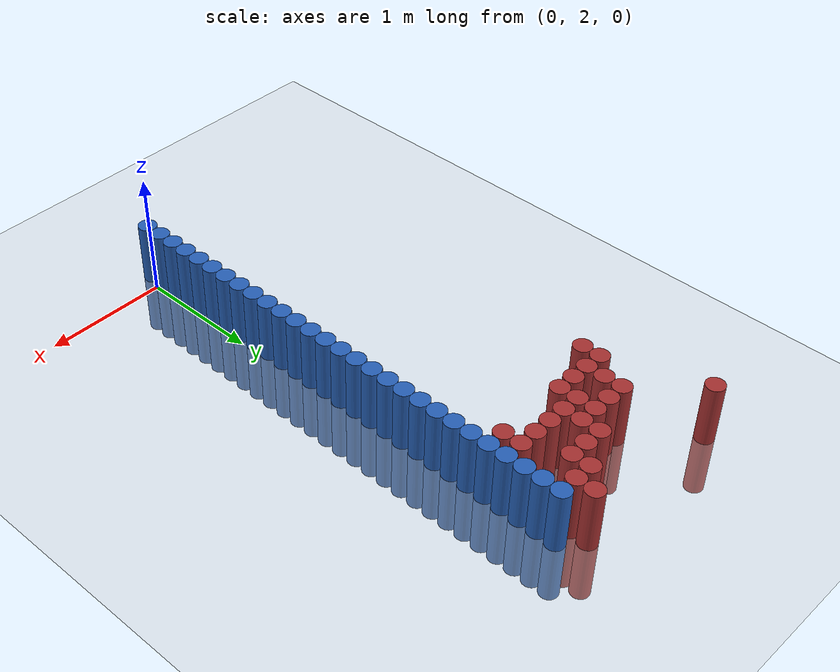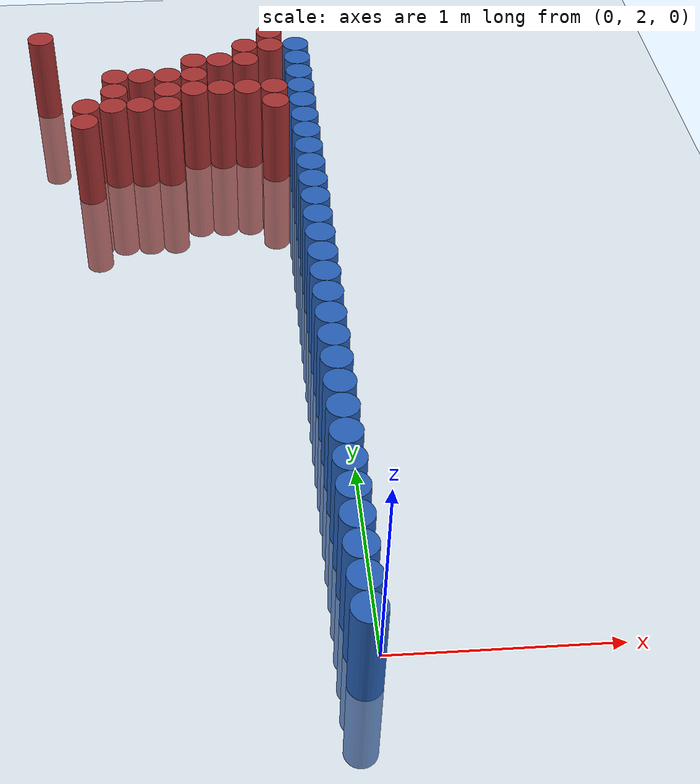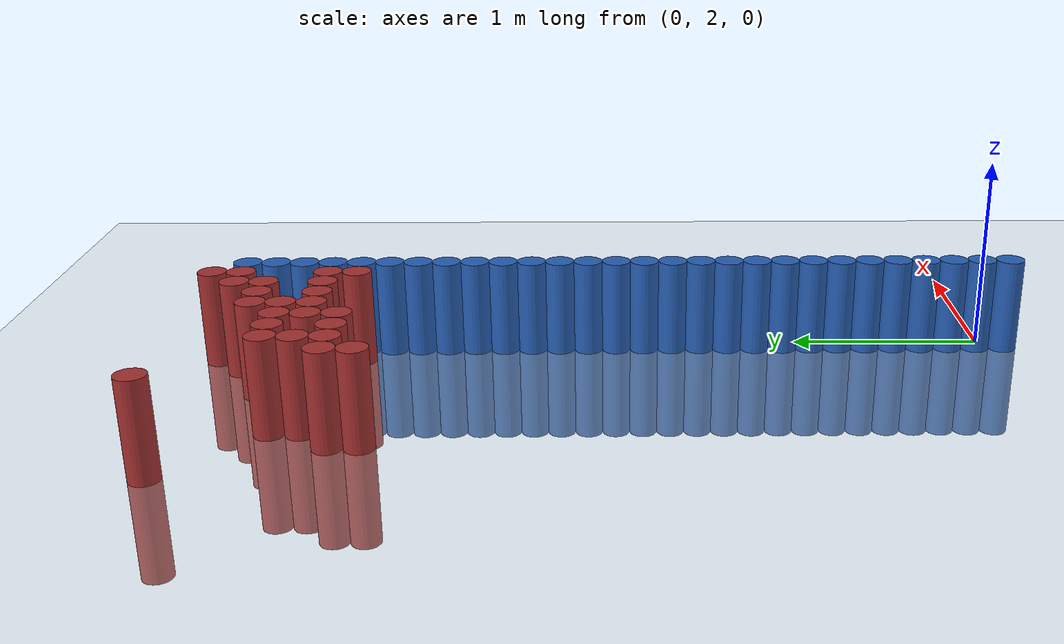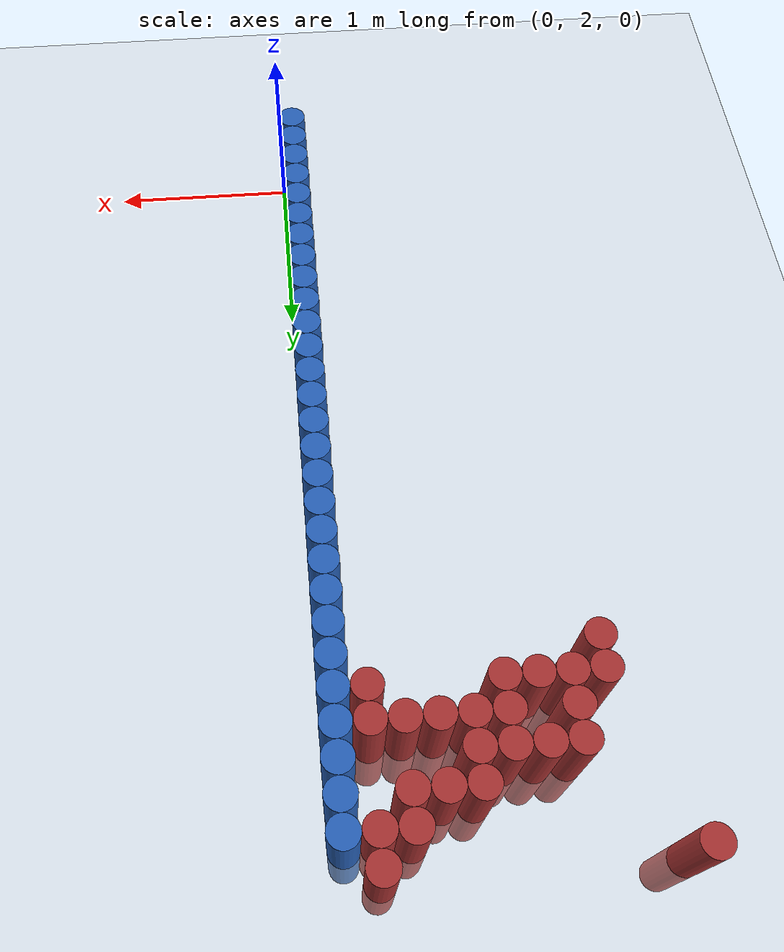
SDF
<sdf version="1.6">
 <world name="default">
  <model name="ground_plane">
   <static>1</static>
   <link name="link">
    <collision name="collision">
     <geometry><plane><normal>0 0 1</normal><size>100 100</size></plane></geometry>
     <surface><friction><ode><mu>100</mu><mu2>50</mu2></ode></friction></surface>
    </collision>
    <visual name="visual">
     <cast_shadows>0</cast_shadows>
     <geometry><plane><normal>0 0 1</normal><size>100 100</size></plane></geometry>
     <material>
      <script><uri>file://media/materials/scripts/gazebo.material</uri><name>Gazebo/Grey</name></script>
     </material>
    </visual>
   </link>
  </model>
  <model name="unit_cylinder_52">
   <static>1</static>
   <pose>-0.075000 1.875000 0.000000 0.000000 0.000000 0.000000</pose>
   <link name="link">
    <inertial>
     <mass>1</mass>
     <inertia><ixx>0.145833</ixx><ixy>0</ixy><ixz>0</ixz><iyy>0.145833</iyy><iyz>0</iyz><izz>0.125</izz></inertia>
    </inertial>
    <collision name="collision">
     <geometry><cylinder><radius>0.075000</radius><length>1</length></cylinder></geometry>
    </collision>
    <visual name="visual">
     <geometry><cylinder><radius>0.075000</radius><length>1</length></cylinder></geometry>
     <material>
      <ambient>0.152000 0.379000 0.720000 1</ambient>
      <diffuse>0.152000 0.379000 0.720000 1</diffuse>
     </material>
     <material>
      <script><name>Gazebo/Grey</name><uri>file://media/materials/scripts/gazebo.material</uri></script>
     </material>
    </visual>
   </link>
  </model>
  <model name="unit_cylinder_54">
   <static>1</static>
   <pose>-0.075000 2.025000 0.000000 0.000000 0.000000 0.000000</pose>
   <link name="link">
    <inertial>
     <mass>1</mass>
     <inertia><ixx>0.145833</ixx><ixy>0</ixy><ixz>0</ixz><iyy>0.145833</iyy><iyz>0</iyz><izz>0.125</izz></inertia>
    </inertial>
    <collision name="collision">
     <geometry><cylinder><radius>0.075000</radius><length>1</length></cylinder></geometry>
    </collision>
    <visual name="visual">
     <geometry><cylinder><radius>0.075000</radius><length>1</length></cylinder></geometry>
     <material>
      <ambient>0.152000 0.379000 0.720000 1</ambient>
      <diffuse>0.152000 0.379000 0.720000 1</diffuse>
     </material>
     <material>
      <script><name>Gazebo/Grey</name><uri>file://media/materials/scripts/gazebo.material</uri></script>
     </material>
    </visual>
   </link>
  </model>
  <model name="unit_cylinder_56">
   <static>1</static>
   <pose>-0.075000 2.175000 0.000000 0.000000 0.000000 0.000000</pose>
   <link name="link">
    <inertial>
     <mass>1</mass>
     <inertia><ixx>0.145833</ixx><ixy>0</ixy><ixz>0</ixz><iyy>0.145833</iyy><iyz>0</iyz><izz>0.125</izz></inertia>
    </inertial>
    <collision name="collision">
     <geometry><cylinder><radius>0.075000</radius><length>1</length></cylinder></geometry>
    </collision>
    <visual name="visual">
     <geometry><cylinder><radius>0.075000</radius><length>1</length></cylinder></geometry>
     <material>
      <ambient>0.152000 0.379000 0.720000 1</ambient>
      <diffuse>0.152000 0.379000 0.720000 1</diffuse>
     </material>
     <material>
      <script><name>Gazebo/Grey</name><uri>file://media/materials/scripts/gazebo.material</uri></script>
     </material>
    </visual>
   </link>
  </model>
  <model name="unit_cylinder_58">
   <static>1</static>
   <pose>-0.075000 2.325000 0.000000 0.000000 0.000000 0.000000</pose>
   <link name="link">
    <inertial>
     <mass>1</mass>
     <inertia><ixx>0.145833</ixx><ixy>0</ixy><ixz>0</ixz><iyy>0.145833</iyy><iyz>0</iyz><izz>0.125</izz></inertia>
    </inertial>
    <collision name="collision">
     <geometry><cylinder><radius>0.075000</radius><length>1</length></cylinder></geometry>
    </collision>
    <visual name="visual">
     <geometry><cylinder><radius>0.075000</radius><length>1</length></cylinder></geometry>
     <material>
      <ambient>0.152000 0.379000 0.720000 1</ambient>
      <diffuse>0.152000 0.379000 0.720000 1</diffuse>
     </material>
     <material>
      <script><name>Gazebo/Grey</name><uri>file://media/materials/scripts/gazebo.material</uri></script>
     </material>
    </visual>
   </link>
  </model>
  <model name="unit_cylinder_60">
   <static>1</static>
   <pose>-0.075000 2.475000 0.000000 0.000000 0.000000 0.000000</pose>
   <link name="link">
    <inertial>
     <mass>1</mass>
     <inertia><ixx>0.145833</ixx><ixy>0</ixy><ixz>0</ixz><iyy>0.145833</iyy><iyz>0</iyz><izz>0.125</izz></inertia>
    </inertial>
    <collision name="collision">
     <geometry><cylinder><radius>0.075000</radius><length>1</length></cylinder></geometry>
    </collision>
    <visual name="visual">
     <geometry><cylinder><radius>0.075000</radius><length>1</length></cylinder></geometry>
     <material>
      <ambient>0.152000 0.379000 0.720000 1</ambient>
      <diffuse>0.152000 0.379000 0.720000 1</diffuse>
     </material>
     <material>
      <script><name>Gazebo/Grey</name><uri>file://media/materials/scripts/gazebo.material</uri></script>
     </material>
    </visual>
   </link>
  </model>
  <model name="unit_cylinder_62">
   <static>1</static>
   <pose>-0.075000 2.625000 0.000000 0.000000 0.000000 0.000000</pose>
   <link name="link">
    <inertial>
     <mass>1</mass>
     <inertia><ixx>0.145833</ixx><ixy>0</ixy><ixz>0</ixz><iyy>0.145833</iyy><iyz>0</iyz><izz>0.125</izz></inertia>
    </inertial>
    <collision name="collision">
     <geometry><cylinder><radius>0.075000</radius><length>1</length></cylinder></geometry>
    </collision>
    <visual name="visual">
     <geometry><cylinder><radius>0.075000</radius><length>1</length></cylinder></geometry>
     <material>
      <ambient>0.152000 0.379000 0.720000 1</ambient>
      <diffuse>0.152000 0.379000 0.720000 1</diffuse>
     </material>
     <material>
      <script><name>Gazebo/Grey</name><uri>file://media/materials/scripts/gazebo.material</uri></script>
     </material>
    </visual>
   </link>
  </model>
  <model name="unit_cylinder_64">
   <static>1</static>
   <pose>-0.075000 2.775000 0.000000 0.000000 0.000000 0.000000</pose>
   <link name="link">
    <inertial>
     <mass>1</mass>
     <inertia><ixx>0.145833</ixx><ixy>0</ixy><ixz>0</ixz><iyy>0.145833</iyy><iyz>0</iyz><izz>0.125</izz></inertia>
    </inertial>
    <collision name="collision">
     <geometry><cylinder><radius>0.075000</radius><length>1</length></cylinder></geometry>
    </collision>
    <visual name="visual">
     <geometry><cylinder><radius>0.075000</radius><length>1</length></cylinder></geometry>
     <material>
      <ambient>0.152000 0.379000 0.720000 1</ambient>
      <diffuse>0.152000 0.379000 0.720000 1</diffuse>
     </material>
     <material>
      <script><name>Gazebo/Grey</name><uri>file://media/materials/scripts/gazebo.material</uri></script>
     </material>
    </visual>
   </link>
  </model>
  <model name="unit_cylinder_66">
   <static>1</static>
   <pose>-0.075000 2.925000 0.000000 0.000000 0.000000 0.000000</pose>
   <link name="link">
    <inertial>
     <mass>1</mass>
     <inertia><ixx>0.145833</ixx><ixy>0</ixy><ixz>0</ixz><iyy>0.145833</iyy><iyz>0</iyz><izz>0.125</izz></inertia>
    </inertial>
    <collision name="collision">
     <geometry><cylinder><radius>0.075000</radius><length>1</length></cylinder></geometry>
    </collision>
    <visual name="visual">
     <geometry><cylinder><radius>0.075000</radius><length>1</length></cylinder></geometry>
     <material>
      <ambient>0.152000 0.379000 0.720000 1</ambient>
      <diffuse>0.152000 0.379000 0.720000 1</diffuse>
     </material>
     <material>
      <script><name>Gazebo/Grey</name><uri>file://media/materials/scripts/gazebo.material</uri></script>
     </material>
    </visual>
   </link>
  </model>
  <model name="unit_cylinder_68">
   <static>1</static>
   <pose>-0.075000 3.075000 0.000000 0.000000 0.000000 0.000000</pose>
   <link name="link">
    <inertial>
     <mass>1</mass>
     <inertia><ixx>0.145833</ixx><ixy>0</ixy><ixz>0</ixz><iyy>0.145833</iyy><iyz>0</iyz><izz>0.125</izz></inertia>
    </inertial>
    <collision name="collision">
     <geometry><cylinder><radius>0.075000</radius><length>1</length></cylinder></geometry>
    </collision>
    <visual name="visual">
     <geometry><cylinder><radius>0.075000</radius><length>1</length></cylinder></geometry>
     <material>
      <ambient>0.152000 0.379000 0.720000 1</ambient>
      <diffuse>0.152000 0.379000 0.720000 1</diffuse>
     </material>
     <material>
      <script><name>Gazebo/Grey</name><uri>file://media/materials/scripts/gazebo.material</uri></script>
     </material>
    </visual>
   </link>
  </model>
  <model name="unit_cylinder_70">
   <static>1</static>
   <pose>-0.075000 3.225000 0.000000 0.000000 0.000000 0.000000</pose>
   <link name="link">
    <inertial>
     <mass>1</mass>
     <inertia><ixx>0.145833</ixx><ixy>0</ixy><ixz>0</ixz><iyy>0.145833</iyy><iyz>0</iyz><izz>0.125</izz></inertia>
    </inertial>
    <collision name="collision">
     <geometry><cylinder><radius>0.075000</radius><length>1</length></cylinder></geometry>
    </collision>
    <visual name="visual">
     <geometry><cylinder><radius>0.075000</radius><length>1</length></cylinder></geometry>
     <material>
      <ambient>0.152000 0.379000 0.720000 1</ambient>
      <diffuse>0.152000 0.379000 0.720000 1</diffuse>
     </material>
     <material>
      <script><name>Gazebo/Grey</name><uri>file://media/materials/scripts/gazebo.material</uri></script>
     </material>
    </visual>
   </link>
  </model>
  <model name="unit_cylinder_72">
   <static>1</static>
   <pose>-0.075000 3.375000 0.000000 0.000000 0.000000 0.000000</pose>
   <link name="link">
    <inertial>
     <mass>1</mass>
     <inertia><ixx>0.145833</ixx><ixy>0</ixy><ixz>0</ixz><iyy>0.145833</iyy><iyz>0</iyz><izz>0.125</izz></inertia>
    </inertial>
    <collision name="collision">
     <geometry><cylinder><radius>0.075000</radius><length>1</length></cylinder></geometry>
    </collision>
    <visual name="visual">
     <geometry><cylinder><radius>0.075000</radius><length>1</length></cylinder></geometry>
     <material>
      <ambient>0.152000 0.379000 0.720000 1</ambient>
      <diffuse>0.152000 0.379000 0.720000 1</diffuse>
     </material>
     <material>
      <script><name>Gazebo/Grey</name><uri>file://media/materials/scripts/gazebo.material</uri></script>
     </material>
    </visual>
   </link>
  </model>
  <model name="unit_cylinder_74">
   <static>1</static>
   <pose>-0.075000 3.525000 0.000000 0.000000 0.000000 0.000000</pose>
   <link name="link">
    <inertial>
     <mass>1</mass>
     <inertia><ixx>0.145833</ixx><ixy>0</ixy><ixz>0</ixz><iyy>0.145833</iyy><iyz>0</iyz><izz>0.125</izz></inertia>
    </inertial>
    <collision name="collision">
     <geometry><cylinder><radius>0.075000</radius><length>1</length></cylinder></geometry>
    </collision>
    <visual name="visual">
     <geometry><cylinder><radius>0.075000</radius><length>1</length></cylinder></geometry>
     <material>
      <ambient>0.152000 0.379000 0.720000 1</ambient>
      <diffuse>0.152000 0.379000 0.720000 1</diffuse>
     </material>
     <material>
      <script><name>Gazebo/Grey</name><uri>file://media/materials/scripts/gazebo.material</uri></script>
     </material>
    </visual>
   </link>
  </model>
  <model name="unit_cylinder_76">
   <static>1</static>
   <pose>-0.075000 3.675000 0.000000 0.000000 0.000000 0.000000</pose>
   <link name="link">
    <inertial>
     <mass>1</mass>
     <inertia><ixx>0.145833</ixx><ixy>0</ixy><ixz>0</ixz><iyy>0.145833</iyy><iyz>0</iyz><izz>0.125</izz></inertia>
    </inertial>
    <collision name="collision">
     <geometry><cylinder><radius>0.075000</radius><length>1</length></cylinder></geometry>
    </collision>
    <visual name="visual">
     <geometry><cylinder><radius>0.075000</radius><length>1</length></cylinder></geometry>
     <material>
      <ambient>0.152000 0.379000 0.720000 1</ambient>
      <diffuse>0.152000 0.379000 0.720000 1</diffuse>
     </material>
     <material>
      <script><name>Gazebo/Grey</name><uri>file://media/materials/scripts/gazebo.material</uri></script>
     </material>
    </visual>
   </link>
  </model>
  <model name="unit_cylinder_78">
   <static>1</static>
   <pose>-0.075000 3.825000 0.000000 0.000000 0.000000 0.000000</pose>
   <link name="link">
    <inertial>
     <mass>1</mass>
     <inertia><ixx>0.145833</ixx><ixy>0</ixy><ixz>0</ixz><iyy>0.145833</iyy><iyz>0</iyz><izz>0.125</izz></inertia>
    </inertial>
    <collision name="collision">
     <geometry><cylinder><radius>0.075000</radius><length>1</length></cylinder></geometry>
    </collision>
    <visual name="visual">
     <geometry><cylinder><radius>0.075000</radius><length>1</length></cylinder></geometry>
     <material>
      <ambient>0.152000 0.379000 0.720000 1</ambient>
      <diffuse>0.152000 0.379000 0.720000 1</diffuse>
     </material>
     <material>
      <script><name>Gazebo/Grey</name><uri>file://media/materials/scripts/gazebo.material</uri></script>
     </material>
    </visual>
   </link>
  </model>
  <model name="unit_cylinder_80">
   <static>1</static>
   <pose>-0.075000 3.975000 0.000000 0.000000 0.000000 0.000000</pose>
   <link name="link">
    <inertial>
     <mass>1</mass>
     <inertia><ixx>0.145833</ixx><ixy>0</ixy><ixz>0</ixz><iyy>0.145833</iyy><iyz>0</iyz><izz>0.125</izz></inertia>
    </inertial>
    <collision name="collision">
     <geometry><cylinder><radius>0.075000</radius><length>1</length></cylinder></geometry>
    </collision>
    <visual name="visual">
     <geometry><cylinder><radius>0.075000</radius><length>1</length></cylinder></geometry>
     <material>
      <ambient>0.152000 0.379000 0.720000 1</ambient>
      <diffuse>0.152000 0.379000 0.720000 1</diffuse>
     </material>
     <material>
      <script><name>Gazebo/Grey</name><uri>file://media/materials/scripts/gazebo.material</uri></script>
     </material>
    </visual>
   </link>
  </model>
  <model name="unit_cylinder_82">
   <static>1</static>
   <pose>-0.075000 4.125000 0.000000 0.000000 0.000000 0.000000</pose>
   <link name="link">
    <inertial>
     <mass>1</mass>
     <inertia><ixx>0.145833</ixx><ixy>0</ixy><ixz>0</ixz><iyy>0.145833</iyy><iyz>0</iyz><izz>0.125</izz></inertia>
    </inertial>
    <collision name="collision">
     <geometry><cylinder><radius>0.075000</radius><length>1</length></cylinder></geometry>
    </collision>
    <visual name="visual">
     <geometry><cylinder><radius>0.075000</radius><length>1</length></cylinder></geometry>
     <material>
      <ambient>0.152000 0.379000 0.720000 1</ambient>
      <diffuse>0.152000 0.379000 0.720000 1</diffuse>
     </material>
     <material>
      <script><name>Gazebo/Grey</name><uri>file://media/materials/scripts/gazebo.material</uri></script>
     </material>
    </visual>
   </link>
  </model>
  <model name="unit_cylinder_84">
   <static>1</static>
   <pose>-0.075000 4.275000 0.000000 0.000000 0.000000 0.000000</pose>
   <link name="link">
    <inertial>
     <mass>1</mass>
     <inertia><ixx>0.145833</ixx><ixy>0</ixy><ixz>0</ixz><iyy>0.145833</iyy><iyz>0</iyz><izz>0.125</izz></inertia>
    </inertial>
    <collision name="collision">
     <geometry><cylinder><radius>0.075000</radius><length>1</length></cylinder></geometry>
    </collision>
    <visual name="visual">
     <geometry><cylinder><radius>0.075000</radius><length>1</length></cylinder></geometry>
     <material>
      <ambient>0.152000 0.379000 0.720000 1</ambient>
      <diffuse>0.152000 0.379000 0.720000 1</diffuse>
     </material>
     <material>
      <script><name>Gazebo/Grey</name><uri>file://media/materials/scripts/gazebo.material</uri></script>
     </material>
    </visual>
   </link>
  </model>
  <model name="unit_cylinder_86">
   <static>1</static>
   <pose>-0.075000 4.425000 0.000000 0.000000 0.000000 0.000000</pose>
   <link name="link">
    <inertial>
     <mass>1</mass>
     <inertia><ixx>0.145833</ixx><ixy>0</ixy><ixz>0</ixz><iyy>0.145833</iyy><iyz>0</iyz><izz>0.125</izz></inertia>
    </inertial>
    <collision name="collision">
     <geometry><cylinder><radius>0.075000</radius><length>1</length></cylinder></geometry>
    </collision>
    <visual name="visual">
     <geometry><cylinder><radius>0.075000</radius><length>1</length></cylinder></geometry>
     <material>
      <ambient>0.152000 0.379000 0.720000 1</ambient>
      <diffuse>0.152000 0.379000 0.720000 1</diffuse>
     </material>
     <material>
      <script><name>Gazebo/Grey</name><uri>file://media/materials/scripts/gazebo.material</uri></script>
     </material>
    </visual>
   </link>
  </model>
  <model name="unit_cylinder_88">
   <static>1</static>
   <pose>-0.075000 4.575000 0.000000 0.000000 0.000000 0.000000</pose>
   <link name="link">
    <inertial>
     <mass>1</mass>
     <inertia><ixx>0.145833</ixx><ixy>0</ixy><ixz>0</ixz><iyy>0.145833</iyy><iyz>0</iyz><izz>0.125</izz></inertia>
    </inertial>
    <collision name="collision">
     <geometry><cylinder><radius>0.075000</radius><length>1</length></cylinder></geometry>
    </collision>
    <visual name="visual">
     <geometry><cylinder><radius>0.075000</radius><length>1</length></cylinder></geometry>
     <material>
      <ambient>0.152000 0.379000 0.720000 1</ambient>
      <diffuse>0.152000 0.379000 0.720000 1</diffuse>
     </material>
     <material>
      <script><name>Gazebo/Grey</name><uri>file://media/materials/scripts/gazebo.material</uri></script>
     </material>
    </visual>
   </link>
  </model>
  <model name="unit_cylinder_90">
   <static>1</static>
   <pose>-0.075000 4.725000 0.000000 0.000000 0.000000 0.000000</pose>
   <link name="link">
    <inertial>
     <mass>1</mass>
     <inertia><ixx>0.145833</ixx><ixy>0</ixy><ixz>0</ixz><iyy>0.145833</iyy><iyz>0</iyz><izz>0.125</izz></inertia>
    </inertial>
    <collision name="collision">
     <geometry><cylinder><radius>0.075000</radius><length>1</length></cylinder></geometry>
    </collision>
    <visual name="visual">
     <geometry><cylinder><radius>0.075000</radius><length>1</length></cylinder></geometry>
     <material>
      <ambient>0.152000 0.379000 0.720000 1</ambient>
      <diffuse>0.152000 0.379000 0.720000 1</diffuse>
     </material>
     <material>
      <script><name>Gazebo/Grey</name><uri>file://media/materials/scripts/gazebo.material</uri></script>
     </material>
    </visual>
   </link>
  </model>
  <model name="unit_cylinder_92">
   <static>1</static>
   <pose>-0.075000 4.875000 0.000000 0.000000 0.000000 0.000000</pose>
   <link name="link">
    <inertial>
     <mass>1</mass>
     <inertia><ixx>0.145833</ixx><ixy>0</ixy><ixz>0</ixz><iyy>0.145833</iyy><iyz>0</iyz><izz>0.125</izz></inertia>
    </inertial>
    <collision name="collision">
     <geometry><cylinder><radius>0.075000</radius><length>1</length></cylinder></geometry>
    </collision>
    <visual name="visual">
     <geometry><cylinder><radius>0.075000</radius><length>1</length></cylinder></geometry>
     <material>
      <ambient>0.152000 0.379000 0.720000 1</ambient>
      <diffuse>0.152000 0.379000 0.720000 1</diffuse>
     </material>
     <material>
      <script><name>Gazebo/Grey</name><uri>file://media/materials/scripts/gazebo.material</uri></script>
     </material>
    </visual>
   </link>
  </model>
  <model name="unit_cylinder_94">
   <static>1</static>
   <pose>-0.075000 5.025000 0.000000 0.000000 0.000000 0.000000</pose>
   <link name="link">
    <inertial>
     <mass>1</mass>
     <inertia><ixx>0.145833</ixx><ixy>0</ixy><ixz>0</ixz><iyy>0.145833</iyy><iyz>0</iyz><izz>0.125</izz></inertia>
    </inertial>
    <collision name="collision">
     <geometry><cylinder><radius>0.075000</radius><length>1</length></cylinder></geometry>
    </collision>
    <visual name="visual">
     <geometry><cylinder><radius>0.075000</radius><length>1</length></cylinder></geometry>
     <material>
      <ambient>0.152000 0.379000 0.720000 1</ambient>
      <diffuse>0.152000 0.379000 0.720000 1</diffuse>
     </material>
     <material>
      <script><name>Gazebo/Grey</name><uri>file://media/materials/scripts/gazebo.material</uri></script>
     </material>
    </visual>
   </link>
  </model>
  <model name="unit_cylinder_228">
   <static>1</static>
   <pose>-1.575000 6.075000 0.000000 0.000000 0.000000 0.000000</pose>
   <link name="link">
    <inertial>
     <mass>1</mass>
     <inertia><ixx>0.145833</ixx><ixy>0</ixy><ixz>0</ixz><iyy>0.145833</iyy><iyz>0</iyz><izz>0.125</izz></inertia>
    </inertial>
    <collision name="collision">
     <geometry><cylinder><radius>0.075000</radius><length>1</length></cylinder></geometry>
    </collision>
    <visual name="visual">
     <geometry><cylinder><radius>0.075000</radius><length>1</length></cylinder></geometry>
     <material>
      <ambient>0.648000 0.192000 0.192000 1</ambient>
      <diffuse>0.648000 0.192000 0.192000 1</diffuse>
     </material>
     <material>
      <script><name>Gazebo/Grey</name><uri>file://media/materials/scripts/gazebo.material</uri></script>
     </material>
    </visual>
   </link>
  </model>
  <model name="unit_cylinder_247">
   <static>1</static>
   <pose>-1.275000 5.175000 0.000000 0.000000 0.000000 0.000000</pose>
   <link name="link">
    <inertial>
     <mass>1</mass>
     <inertia><ixx>0.145833</ixx><ixy>0</ixy><ixz>0</ixz><iyy>0.145833</iyy><iyz>0</iyz><izz>0.125</izz></inertia>
    </inertial>
    <collision name="collision">
     <geometry><cylinder><radius>0.075000</radius><length>1</length></cylinder></geometry>
    </collision>
    <visual name="visual">
     <geometry><cylinder><radius>0.075000</radius><length>1</length></cylinder></geometry>
     <material>
      <ambient>0.648000 0.192000 0.192000 1</ambient>
      <diffuse>0.648000 0.192000 0.192000 1</diffuse>
     </material>
     <material>
      <script><name>Gazebo/Grey</name><uri>file://media/materials/scripts/gazebo.material</uri></script>
     </material>
    </visual>
   </link>
  </model>
  <model name="unit_cylinder_248">
   <static>1</static>
   <pose>-1.275000 5.325000 0.000000 0.000000 0.000000 0.000000</pose>
   <link name="link">
    <inertial>
     <mass>1</mass>
     <inertia><ixx>0.145833</ixx><ixy>0</ixy><ixz>0</ixz><iyy>0.145833</iyy><iyz>0</iyz><izz>0.125</izz></inertia>
    </inertial>
    <collision name="collision">
     <geometry><cylinder><radius>0.075000</radius><length>1</length></cylinder></geometry>
    </collision>
    <visual name="visual">
     <geometry><cylinder><radius>0.075000</radius><length>1</length></cylinder></geometry>
     <material>
      <ambient>0.648000 0.192000 0.192000 1</ambient>
      <diffuse>0.648000 0.192000 0.192000 1</diffuse>
     </material>
     <material>
      <script><name>Gazebo/Grey</name><uri>file://media/materials/scripts/gazebo.material</uri></script>
     </material>
    </visual>
   </link>
  </model>
  <model name="unit_cylinder_252">
   <static>1</static>
   <pose>-1.125000 5.325000 0.000000 0.000000 0.000000 0.000000</pose>
   <link name="link">
    <inertial>
     <mass>1</mass>
     <inertia><ixx>0.145833</ixx><ixy>0</ixy><ixz>0</ixz><iyy>0.145833</iyy><iyz>0</iyz><izz>0.125</izz></inertia>
    </inertial>
    <collision name="collision">
     <geometry><cylinder><radius>0.075000</radius><length>1</length></cylinder></geometry>
    </collision>
    <visual name="visual">
     <geometry><cylinder><radius>0.075000</radius><length>1</length></cylinder></geometry>
     <material>
      <ambient>0.648000 0.192000 0.192000 1</ambient>
      <diffuse>0.648000 0.192000 0.192000 1</diffuse>
     </material>
     <material>
      <script><name>Gazebo/Grey</name><uri>file://media/materials/scripts/gazebo.material</uri></script>
     </material>
    </visual>
   </link>
  </model>
  <model name="unit_cylinder_253">
   <static>1</static>
   <pose>-1.125000 5.475000 0.000000 0.000000 0.000000 0.000000</pose>
   <link name="link">
    <inertial>
     <mass>1</mass>
     <inertia><ixx>0.145833</ixx><ixy>0</ixy><ixz>0</ixz><iyy>0.145833</iyy><iyz>0</iyz><izz>0.125</izz></inertia>
    </inertial>
    <collision name="collision">
     <geometry><cylinder><radius>0.075000</radius><length>1</length></cylinder></geometry>
    </collision>
    <visual name="visual">
     <geometry><cylinder><radius>0.075000</radius><length>1</length></cylinder></geometry>
     <material>
      <ambient>0.648000 0.192000 0.192000 1</ambient>
      <diffuse>0.648000 0.192000 0.192000 1</diffuse>
     </material>
     <material>
      <script><name>Gazebo/Grey</name><uri>file://media/materials/scripts/gazebo.material</uri></script>
     </material>
    </visual>
   </link>
  </model>
  <model name="unit_cylinder_254">
   <static>1</static>
   <pose>-1.125000 5.625000 0.000000 0.000000 0.000000 0.000000</pose>
   <link name="link">
    <inertial>
     <mass>1</mass>
     <inertia><ixx>0.145833</ixx><ixy>0</ixy><ixz>0</ixz><iyy>0.145833</iyy><iyz>0</iyz><izz>0.125</izz></inertia>
    </inertial>
    <collision name="collision">
     <geometry><cylinder><radius>0.075000</radius><length>1</length></cylinder></geometry>
    </collision>
    <visual name="visual">
     <geometry><cylinder><radius>0.075000</radius><length>1</length></cylinder></geometry>
     <material>
      <ambient>0.648000 0.192000 0.192000 1</ambient>
      <diffuse>0.648000 0.192000 0.192000 1</diffuse>
     </material>
     <material>
      <script><name>Gazebo/Grey</name><uri>file://media/materials/scripts/gazebo.material</uri></script>
     </material>
    </visual>
   </link>
  </model>
  <model name="unit_cylinder_262">
   <static>1</static>
   <pose>-0.975000 5.325000 0.000000 0.000000 0.000000 0.000000</pose>
   <link name="link">
    <inertial>
     <mass>1</mass>
     <inertia><ixx>0.145833</ixx><ixy>0</ixy><ixz>0</ixz><iyy>0.145833</iyy><iyz>0</iyz><izz>0.125</izz></inertia>
    </inertial>
    <collision name="collision">
     <geometry><cylinder><radius>0.075000</radius><length>1</length></cylinder></geometry>
    </collision>
    <visual name="visual">
     <geometry><cylinder><radius>0.075000</radius><length>1</length></cylinder></geometry>
     <material>
      <ambient>0.648000 0.192000 0.192000 1</ambient>
      <diffuse>0.648000 0.192000 0.192000 1</diffuse>
     </material>
     <material>
      <script><name>Gazebo/Grey</name><uri>file://media/materials/scripts/gazebo.material</uri></script>
     </material>
    </visual>
   </link>
  </model>
  <model name="unit_cylinder_263">
   <static>1</static>
   <pose>-0.975000 5.625000 0.000000 0.000000 0.000000 0.000000</pose>
   <link name="link">
    <inertial>
     <mass>1</mass>
     <inertia><ixx>0.145833</ixx><ixy>0</ixy><ixz>0</ixz><iyy>0.145833</iyy><iyz>0</iyz><izz>0.125</izz></inertia>
    </inertial>
    <collision name="collision">
     <geometry><cylinder><radius>0.075000</radius><length>1</length></cylinder></geometry>
    </collision>
    <visual name="visual">
     <geometry><cylinder><radius>0.075000</radius><length>1</length></cylinder></geometry>
     <material>
      <ambient>0.648000 0.192000 0.192000 1</ambient>
      <diffuse>0.648000 0.192000 0.192000 1</diffuse>
     </material>
     <material>
      <script><name>Gazebo/Grey</name><uri>file://media/materials/scripts/gazebo.material</uri></script>
     </material>
    </visual>
   </link>
  </model>
  <model name="unit_cylinder_271">
   <static>1</static>
   <pose>-0.825000 5.325000 0.000000 0.000000 0.000000 0.000000</pose>
   <link name="link">
    <inertial>
     <mass>1</mass>
     <inertia><ixx>0.145833</ixx><ixy>0</ixy><ixz>0</ixz><iyy>0.145833</iyy><iyz>0</iyz><izz>0.125</izz></inertia>
    </inertial>
    <collision name="collision">
     <geometry><cylinder><radius>0.075000</radius><length>1</length></cylinder></geometry>
    </collision>
    <visual name="visual">
     <geometry><cylinder><radius>0.075000</radius><length>1</length></cylinder></geometry>
     <material>
      <ambient>0.648000 0.192000 0.192000 1</ambient>
      <diffuse>0.648000 0.192000 0.192000 1</diffuse>
     </material>
     <material>
      <script><name>Gazebo/Grey</name><uri>file://media/materials/scripts/gazebo.material</uri></script>
     </material>
    </visual>
   </link>
  </model>
  <model name="unit_cylinder_272">
   <static>1</static>
   <pose>-0.825000 5.475000 0.000000 0.000000 0.000000 0.000000</pose>
   <link name="link">
    <inertial>
     <mass>1</mass>
     <inertia><ixx>0.145833</ixx><ixy>0</ixy><ixz>0</ixz><iyy>0.145833</iyy><iyz>0</iyz><izz>0.125</izz></inertia>
    </inertial>
    <collision name="collision">
     <geometry><cylinder><radius>0.075000</radius><length>1</length></cylinder></geometry>
    </collision>
    <visual name="visual">
     <geometry><cylinder><radius>0.075000</radius><length>1</length></cylinder></geometry>
     <material>
      <ambient>0.648000 0.192000 0.192000 1</ambient>
      <diffuse>0.648000 0.192000 0.192000 1</diffuse>
     </material>
     <material>
      <script><name>Gazebo/Grey</name><uri>file://media/materials/scripts/gazebo.material</uri></script>
     </material>
    </visual>
   </link>
  </model>
  <model name="unit_cylinder_273">
   <static>1</static>
   <pose>-0.825000 5.625000 0.000000 0.000000 0.000000 0.000000</pose>
   <link name="link">
    <inertial>
     <mass>1</mass>
     <inertia><ixx>0.145833</ixx><ixy>0</ixy><ixz>0</ixz><iyy>0.145833</iyy><iyz>0</iyz><izz>0.125</izz></inertia>
    </inertial>
    <collision name="collision">
     <geometry><cylinder><radius>0.075000</radius><length>1</length></cylinder></geometry>
    </collision>
    <visual name="visual">
     <geometry><cylinder><radius>0.075000</radius><length>1</length></cylinder></geometry>
     <material>
      <ambient>0.648000 0.192000 0.192000 1</ambient>
      <diffuse>0.648000 0.192000 0.192000 1</diffuse>
     </material>
     <material>
      <script><name>Gazebo/Grey</name><uri>file://media/materials/scripts/gazebo.material</uri></script>
     </material>
    </visual>
   </link>
  </model>
  <model name="unit_cylinder_282">
   <static>1</static>
   <pose>-0.675000 5.475000 0.000000 0.000000 0.000000 0.000000</pose>
   <link name="link">
    <inertial>
     <mass>1</mass>
     <inertia><ixx>0.145833</ixx><ixy>0</ixy><ixz>0</ixz><iyy>0.145833</iyy><iyz>0</iyz><izz>0.125</izz></inertia>
    </inertial>
    <collision name="collision">
     <geometry><cylinder><radius>0.075000</radius><length>1</length></cylinder></geometry>
    </collision>
    <visual name="visual">
     <geometry><cylinder><radius>0.075000</radius><length>1</length></cylinder></geometry>
     <material>
      <ambient>0.648000 0.192000 0.192000 1</ambient>
      <diffuse>0.648000 0.192000 0.192000 1</diffuse>
     </material>
     <material>
      <script><name>Gazebo/Grey</name><uri>file://media/materials/scripts/gazebo.material</uri></script>
     </material>
    </visual>
   </link>
  </model>
  <model name="unit_cylinder_283">
   <static>1</static>
   <pose>-0.675000 5.625000 0.000000 0.000000 0.000000 0.000000</pose>
   <link name="link">
    <inertial>
     <mass>1</mass>
     <inertia><ixx>0.145833</ixx><ixy>0</ixy><ixz>0</ixz><iyy>0.145833</iyy><iyz>0</iyz><izz>0.125</izz></inertia>
    </inertial>
    <collision name="collision">
     <geometry><cylinder><radius>0.075000</radius><length>1</length></cylinder></geometry>
    </collision>
    <visual name="visual">
     <geometry><cylinder><radius>0.075000</radius><length>1</length></cylinder></geometry>
     <material>
      <ambient>0.648000 0.192000 0.192000 1</ambient>
      <diffuse>0.648000 0.192000 0.192000 1</diffuse>
     </material>
     <material>
      <script><name>Gazebo/Grey</name><uri>file://media/materials/scripts/gazebo.material</uri></script>
     </material>
    </visual>
   </link>
  </model>
  <model name="unit_cylinder_284">
   <static>1</static>
   <pose>-0.675000 5.775000 0.000000 0.000000 0.000000 0.000000</pose>
   <link name="link">
    <inertial>
     <mass>1</mass>
     <inertia><ixx>0.145833</ixx><ixy>0</ixy><ixz>0</ixz><iyy>0.145833</iyy><iyz>0</iyz><izz>0.125</izz></inertia>
    </inertial>
    <collision name="collision">
     <geometry><cylinder><radius>0.075000</radius><length>1</length></cylinder></geometry>
    </collision>
    <visual name="visual">
     <geometry><cylinder><radius>0.075000</radius><length>1</length></cylinder></geometry>
     <material>
      <ambient>0.648000 0.192000 0.192000 1</ambient>
      <diffuse>0.648000 0.192000 0.192000 1</diffuse>
     </material>
     <material>
      <script><name>Gazebo/Grey</name><uri>file://media/materials/scripts/gazebo.material</uri></script>
     </material>
    </visual>
   </link>
  </model>
  <model name="unit_cylinder_290">
   <static>1</static>
   <pose>-0.525000 5.475000 0.000000 0.000000 0.000000 0.000000</pose>
   <link name="link">
    <inertial>
     <mass>1</mass>
     <inertia><ixx>0.145833</ixx><ixy>0</ixy><ixz>0</ixz><iyy>0.145833</iyy><iyz>0</iyz><izz>0.125</izz></inertia>
    </inertial>
    <collision name="collision">
     <geometry><cylinder><radius>0.075000</radius><length>1</length></cylinder></geometry>
    </collision>
    <visual name="visual">
     <geometry><cylinder><radius>0.075000</radius><length>1</length></cylinder></geometry>
     <material>
      <ambient>0.648000 0.192000 0.192000 1</ambient>
      <diffuse>0.648000 0.192000 0.192000 1</diffuse>
     </material>
     <material>
      <script><name>Gazebo/Grey</name><uri>file://media/materials/scripts/gazebo.material</uri></script>
     </material>
    </visual>
   </link>
  </model>
  <model name="unit_cylinder_291">
   <static>1</static>
   <pose>-0.525000 5.775000 0.000000 0.000000 0.000000 0.000000</pose>
   <link name="link">
    <inertial>
     <mass>1</mass>
     <inertia><ixx>0.145833</ixx><ixy>0</ixy><ixz>0</ixz><iyy>0.145833</iyy><iyz>0</iyz><izz>0.125</izz></inertia>
    </inertial>
    <collision name="collision">
     <geometry><cylinder><radius>0.075000</radius><length>1</length></cylinder></geometry>
    </collision>
    <visual name="visual">
     <geometry><cylinder><radius>0.075000</radius><length>1</length></cylinder></geometry>
     <material>
      <ambient>0.648000 0.192000 0.192000 1</ambient>
      <diffuse>0.648000 0.192000 0.192000 1</diffuse>
     </material>
     <material>
      <script><name>Gazebo/Grey</name><uri>file://media/materials/scripts/gazebo.material</uri></script>
     </material>
    </visual>
   </link>
  </model>
  <model name="unit_cylinder_295">
   <static>1</static>
   <pose>-0.375000 5.475000 0.000000 0.000000 0.000000 0.000000</pose>
   <link name="link">
    <inertial>
     <mass>1</mass>
     <inertia><ixx>0.145833</ixx><ixy>0</ixy><ixz>0</ixz><iyy>0.145833</iyy><iyz>0</iyz><izz>0.125</izz></inertia>
    </inertial>
    <collision name="collision">
     <geometry><cylinder><radius>0.075000</radius><length>1</length></cylinder></geometry>
    </collision>
    <visual name="visual">
     <geometry><cylinder><radius>0.075000</radius><length>1</length></cylinder></geometry>
     <material>
      <ambient>0.648000 0.192000 0.192000 1</ambient>
      <diffuse>0.648000 0.192000 0.192000 1</diffuse>
     </material>
     <material>
      <script><name>Gazebo/Grey</name><uri>file://media/materials/scripts/gazebo.material</uri></script>
     </material>
    </visual>
   </link>
  </model>
  <model name="unit_cylinder_296">
   <static>1</static>
   <pose>-0.375000 5.775000 0.000000 0.000000 0.000000 0.000000</pose>
   <link name="link">
    <inertial>
     <mass>1</mass>
     <inertia><ixx>0.145833</ixx><ixy>0</ixy><ixz>0</ixz><iyy>0.145833</iyy><iyz>0</iyz><izz>0.125</izz></inertia>
    </inertial>
    <collision name="collision">
     <geometry><cylinder><radius>0.075000</radius><length>1</length></cylinder></geometry>
    </collision>
    <visual name="visual">
     <geometry><cylinder><radius>0.075000</radius><length>1</length></cylinder></geometry>
     <material>
      <ambient>0.648000 0.192000 0.192000 1</ambient>
      <diffuse>0.648000 0.192000 0.192000 1</diffuse>
     </material>
     <material>
      <script><name>Gazebo/Grey</name><uri>file://media/materials/scripts/gazebo.material</uri></script>
     </material>
    </visual>
   </link>
  </model>
  <model name="unit_cylinder_297">
   <static>1</static>
   <pose>-0.375000 5.925000 0.000000 0.000000 0.000000 0.000000</pose>
   <link name="link">
    <inertial>
     <mass>1</mass>
     <inertia><ixx>0.145833</ixx><ixy>0</ixy><ixz>0</ixz><iyy>0.145833</iyy><iyz>0</iyz><izz>0.125</izz></inertia>
    </inertial>
    <collision name="collision">
     <geometry><cylinder><radius>0.075000</radius><length>1</length></cylinder></geometry>
    </collision>
    <visual name="visual">
     <geometry><cylinder><radius>0.075000</radius><length>1</length></cylinder></geometry>
     <material>
      <ambient>0.648000 0.192000 0.192000 1</ambient>
      <diffuse>0.648000 0.192000 0.192000 1</diffuse>
     </material>
     <material>
      <script><name>Gazebo/Grey</name><uri>file://media/materials/scripts/gazebo.material</uri></script>
     </material>
    </visual>
   </link>
  </model>
  <model name="unit_cylinder_304">
   <static>1</static>
   <pose>-0.225000 5.325000 0.000000 0.000000 0.000000 0.000000</pose>
   <link name="link">
    <inertial>
     <mass>1</mass>
     <inertia><ixx>0.145833</ixx><ixy>0</ixy><ixz>0</ixz><iyy>0.145833</iyy><iyz>0</iyz><izz>0.125</izz></inertia>
    </inertial>
    <collision name="collision">
     <geometry><cylinder><radius>0.075000</radius><length>1</length></cylinder></geometry>
    </collision>
    <visual name="visual">
     <geometry><cylinder><radius>0.075000</radius><length>1</length></cylinder></geometry>
     <material>
      <ambient>0.648000 0.192000 0.192000 1</ambient>
      <diffuse>0.648000 0.192000 0.192000 1</diffuse>
     </material>
     <material>
      <script><name>Gazebo/Grey</name><uri>file://media/materials/scripts/gazebo.material</uri></script>
     </material>
    </visual>
   </link>
  </model>
  <model name="unit_cylinder_305">
   <static>1</static>
   <pose>-0.225000 5.475000 0.000000 0.000000 0.000000 0.000000</pose>
   <link name="link">
    <inertial>
     <mass>1</mass>
     <inertia><ixx>0.145833</ixx><ixy>0</ixy><ixz>0</ixz><iyy>0.145833</iyy><iyz>0</iyz><izz>0.125</izz></inertia>
    </inertial>
    <collision name="collision">
     <geometry><cylinder><radius>0.075000</radius><length>1</length></cylinder></geometry>
    </collision>
    <visual name="visual">
     <geometry><cylinder><radius>0.075000</radius><length>1</length></cylinder></geometry>
     <material>
      <ambient>0.648000 0.192000 0.192000 1</ambient>
      <diffuse>0.648000 0.192000 0.192000 1</diffuse>
     </material>
     <material>
      <script><name>Gazebo/Grey</name><uri>file://media/materials/scripts/gazebo.material</uri></script>
     </material>
    </visual>
   </link>
  </model>
  <model name="unit_cylinder_306">
   <static>1</static>
   <pose>-0.225000 5.925000 0.000000 0.000000 0.000000 0.000000</pose>
   <link name="link">
    <inertial>
     <mass>1</mass>
     <inertia><ixx>0.145833</ixx><ixy>0</ixy><ixz>0</ixz><iyy>0.145833</iyy><iyz>0</iyz><izz>0.125</izz></inertia>
    </inertial>
    <collision name="collision">
     <geometry><cylinder><radius>0.075000</radius><length>1</length></cylinder></geometry>
    </collision>
    <visual name="visual">
     <geometry><cylinder><radius>0.075000</radius><length>1</length></cylinder></geometry>
     <material>
      <ambient>0.648000 0.192000 0.192000 1</ambient>
      <diffuse>0.648000 0.192000 0.192000 1</diffuse>
     </material>
     <material>
      <script><name>Gazebo/Grey</name><uri>file://media/materials/scripts/gazebo.material</uri></script>
     </material>
    </visual>
   </link>
  </model>
  <model name="unit_cylinder_307">
   <static>1</static>
   <pose>-0.225000 6.075000 0.000000 0.000000 0.000000 0.000000</pose>
   <link name="link">
    <inertial>
     <mass>1</mass>
     <inertia><ixx>0.145833</ixx><ixy>0</ixy><ixz>0</ixz><iyy>0.145833</iyy><iyz>0</iyz><izz>0.125</izz></inertia>
    </inertial>
    <collision name="collision">
     <geometry><cylinder><radius>0.075000</radius><length>1</length></cylinder></geometry>
    </collision>
    <visual name="visual">
     <geometry><cylinder><radius>0.075000</radius><length>1</length></cylinder></geometry>
     <material>
      <ambient>0.648000 0.192000 0.192000 1</ambient>
      <diffuse>0.648000 0.192000 0.192000 1</diffuse>
     </material>
     <material>
      <script><name>Gazebo/Grey</name><uri>file://media/materials/scripts/gazebo.material</uri></script>
     </material>
    </visual>
   </link>
  </model>
  <model name="unit_cylinder_326">
   <static>1</static>
   <pose>-0.075000 5.175000 0.000000 0.000000 0.000000 0.000000</pose>
   <link name="link">
    <inertial>
     <mass>1</mass>
     <inertia><ixx>0.145833</ixx><ixy>0</ixy><ixz>0</ixz><iyy>0.145833</iyy><iyz>0</iyz><izz>0.125</izz></inertia>
    </inertial>
    <collision name="collision">
     <geometry><cylinder><radius>0.075000</radius><length>1</length></cylinder></geometry>
    </collision>
    <visual name="visual">
     <geometry><cylinder><radius>0.075000</radius><length>1</length></cylinder></geometry>
     <material>
      <ambient>0.152000 0.379000 0.720000 1</ambient>
      <diffuse>0.152000 0.379000 0.720000 1</diffuse>
     </material>
     <material>
      <script><name>Gazebo/Grey</name><uri>file://media/materials/scripts/gazebo.material</uri></script>
     </material>
    </visual>
   </link>
  </model>
  <model name="unit_cylinder_327">
   <static>1</static>
   <pose>-0.075000 5.325000 0.000000 0.000000 0.000000 0.000000</pose>
   <link name="link">
    <inertial>
     <mass>1</mass>
     <inertia><ixx>0.145833</ixx><ixy>0</ixy><ixz>0</ixz><iyy>0.145833</iyy><iyz>0</iyz><izz>0.125</izz></inertia>
    </inertial>
    <collision name="collision">
     <geometry><cylinder><radius>0.075000</radius><length>1</length></cylinder></geometry>
    </collision>
    <visual name="visual">
     <geometry><cylinder><radius>0.075000</radius><length>1</length></cylinder></geometry>
     <material>
      <ambient>0.152000 0.379000 0.720000 1</ambient>
      <diffuse>0.152000 0.379000 0.720000 1</diffuse>
     </material>
     <material>
      <script><name>Gazebo/Grey</name><uri>file://media/materials/scripts/gazebo.material</uri></script>
     </material>
    </visual>
   </link>
  </model>
  <model name="unit_cylinder_328">
   <static>1</static>
   <pose>-0.075000 5.475000 0.000000 0.000000 0.000000 0.000000</pose>
   <link name="link">
    <inertial>
     <mass>1</mass>
     <inertia><ixx>0.145833</ixx><ixy>0</ixy><ixz>0</ixz><iyy>0.145833</iyy><iyz>0</iyz><izz>0.125</izz></inertia>
    </inertial>
    <collision name="collision">
     <geometry><cylinder><radius>0.075000</radius><length>1</length></cylinder></geometry>
    </collision>
    <visual name="visual">
     <geometry><cylinder><radius>0.075000</radius><length>1</length></cylinder></geometry>
     <material>
      <ambient>0.152000 0.379000 0.720000 1</ambient>
      <diffuse>0.152000 0.379000 0.720000 1</diffuse>
     </material>
     <material>
      <script><name>Gazebo/Grey</name><uri>file://media/materials/scripts/gazebo.material</uri></script>
     </material>
    </visual>
   </link>
  </model>
  <model name="unit_cylinder_329">
   <static>1</static>
   <pose>-0.075000 5.625000 0.000000 0.000000 0.000000 0.000000</pose>
   <link name="link">
    <inertial>
     <mass>1</mass>
     <inertia><ixx>0.145833</ixx><ixy>0</ixy><ixz>0</ixz><iyy>0.145833</iyy><iyz>0</iyz><izz>0.125</izz></inertia>
    </inertial>
    <collision name="collision">
     <geometry><cylinder><radius>0.075000</radius><length>1</length></cylinder></geometry>
    </collision>
    <visual name="visual">
     <geometry><cylinder><radius>0.075000</radius><length>1</length></cylinder></geometry>
     <material>
      <ambient>0.152000 0.379000 0.720000 1</ambient>
      <diffuse>0.152000 0.379000 0.720000 1</diffuse>
     </material>
     <material>
      <script><name>Gazebo/Grey</name><uri>file://media/materials/scripts/gazebo.material</uri></script>
     </material>
    </visual>
   </link>
  </model>
  <model name="unit_cylinder_330">
   <static>1</static>
   <pose>-0.075000 5.775000 0.000000 0.000000 0.000000 0.000000</pose>
   <link name="link">
    <inertial>
     <mass>1</mass>
     <inertia><ixx>0.145833</ixx><ixy>0</ixy><ixz>0</ixz><iyy>0.145833</iyy><iyz>0</iyz><izz>0.125</izz></inertia>
    </inertial>
    <collision name="collision">
     <geometry><cylinder><radius>0.075000</radius><length>1</length></cylinder></geometry>
    </collision>
    <visual name="visual">
     <geometry><cylinder><radius>0.075000</radius><length>1</length></cylinder></geometry>
     <material>
      <ambient>0.152000 0.379000 0.720000 1</ambient>
      <diffuse>0.152000 0.379000 0.720000 1</diffuse>
     </material>
     <material>
      <script><name>Gazebo/Grey</name><uri>file://media/materials/scripts/gazebo.material</uri></script>
     </material>
    </visual>
   </link>
  </model>
  <model name="unit_cylinder_331">
   <static>1</static>
   <pose>-0.075000 5.925000 0.000000 0.000000 0.000000 0.000000</pose>
   <link name="link">
    <inertial>
     <mass>1</mass>
     <inertia><ixx>0.145833</ixx><ixy>0</ixy><ixz>0</ixz><iyy>0.145833</iyy><iyz>0</iyz><izz>0.125</izz></inertia>
    </inertial>
    <collision name="collision">
     <geometry><cylinder><radius>0.075000</radius><length>1</length></cylinder></geometry>
    </collision>
    <visual name="visual">
     <geometry><cylinder><radius>0.075000</radius><length>1</length></cylinder></geometry>
     <material>
      <ambient>0.152000 0.379000 0.720000 1</ambient>
      <diffuse>0.152000 0.379000 0.720000 1</diffuse>
     </material>
     <material>
      <script><name>Gazebo/Grey</name><uri>file://media/materials/scripts/gazebo.material</uri></script>
     </material>
    </visual>
   </link>
  </model>
 </world>
</sdf>
